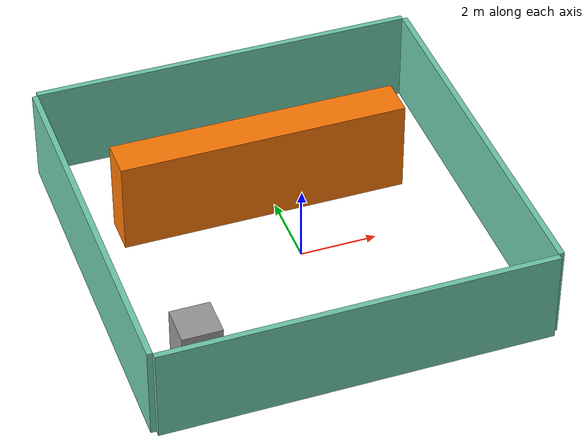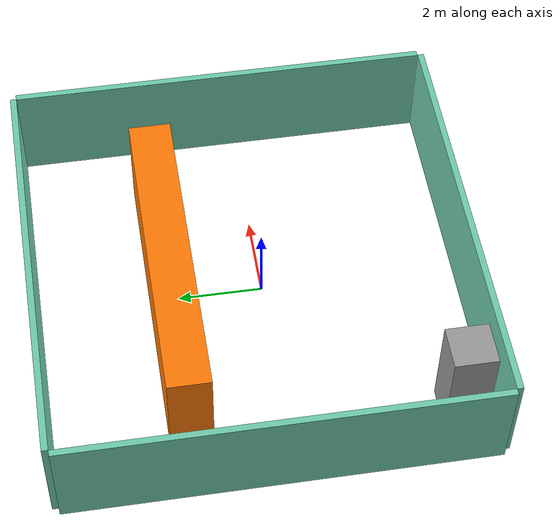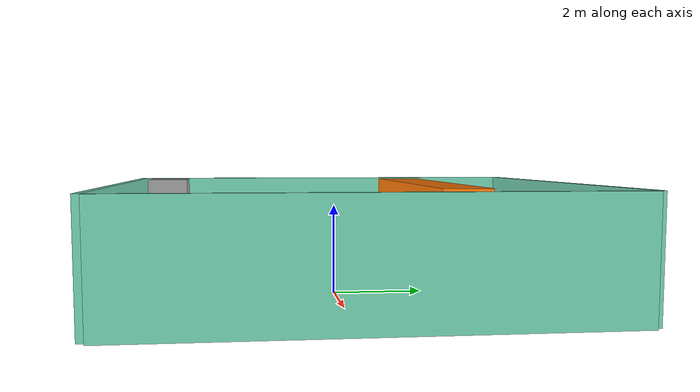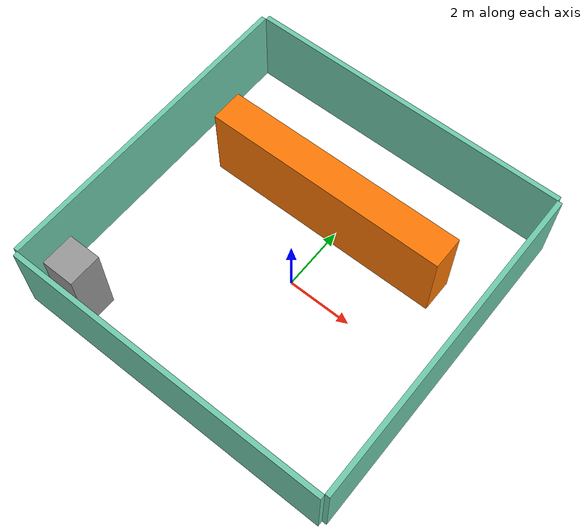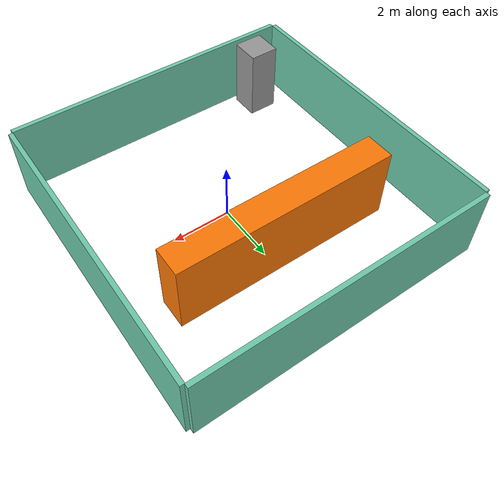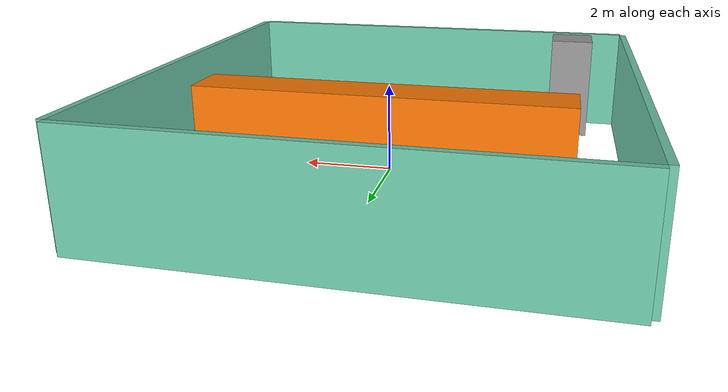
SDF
<?xml version='1.0'?>
<sdf version='1.7'>
  <model name='deneme1'>
    <pose>-0.247 0.3135 0 0 -0 0</pose>
    <link name='Wall_0'>
      <collision name='Wall_0_Collision'>
        <geometry>
          <box>
            <size>10 0.15 2.5</size>
          </box>
        </geometry>
        <pose>0 0 1.25 0 -0 0</pose>
      </collision>
      <visual name='Wall_0_Visual'>
        <pose>0 0 1.25 0 -0 0</pose>
        <geometry>
          <box>
            <size>10 0.15 2.5</size>
          </box>
        </geometry>
        <material>
          <script>
            <uri>file://media/materials/scripts/gazebo.material</uri>
            <name>Gazebo/Grey</name>
          </script>
          <ambient>0.435294 0.796078 0.67451 1</ambient>
        </material>
        <meta>
          <layer>0</layer>
        </meta>
      </visual>
      <pose>0.002 -5.0785 0 0 -0 0</pose>
    </link>
    <link name='Wall_11'>
      <collision name='Wall_11_Collision'>
        <geometry>
          <box>
            <size>1 1 2.5</size>
          </box>
        </geometry>
        <pose>0 0 1.25 0 -0 0</pose>
      </collision>
      <visual name='Wall_11_Visual'>
        <pose>0 0 1.25 0 -0 0</pose>
        <geometry>
          <box>
            <size>1 1 2.5</size>
          </box>
        </geometry>
        <material>
          <script>
            <uri>file://media/materials/scripts/gazebo.material</uri>
            <name>Gazebo/Grey</name>
          </script>
          <ambient>1 1 1 1</ambient>
        </material>
        <meta>
          <layer>0</layer>
        </meta>
      </visual>
      <pose>-3.753 -4.3135 0 0 -0 0</pose>
    </link>
    <link name='Wall_2'>
      <collision name='Wall_2_Collision'>
        <geometry>
          <box>
            <size>10 0.15 2.5</size>
          </box>
        </geometry>
        <pose>0 0 1.25 0 -0 0</pose>
      </collision>
      <visual name='Wall_2_Visual'>
        <pose>0 0 1.25 0 -0 0</pose>
        <geometry>
          <box>
            <size>10 0.15 2.5</size>
          </box>
        </geometry>
        <material>
          <script>
            <uri>file://media/materials/scripts/gazebo.material</uri>
            <name>Gazebo/Grey</name>
          </script>
          <ambient>0.435294 0.796078 0.67451 1</ambient>
        </material>
        <meta>
          <layer>0</layer>
        </meta>
      </visual>
      <pose>-5.066 -0.0015 0 0 -0 1.5708</pose>
    </link>
    <link name='Wall_28'>
      <collision name='Wall_28_Collision'>
        <geometry>
          <box>
            <size>7.5 1 2.5</size>
          </box>
        </geometry>
        <pose>0 0 1.25 0 -0 0</pose>
      </collision>
      <visual name='Wall_28_Visual'>
        <pose>0 0 1.25 0 -0 0</pose>
        <geometry>
          <box>
            <size>7.5 1 2.5</size>
          </box>
        </geometry>
        <material>
          <script>
            <uri>file://media/materials/scripts/gazebo.material</uri>
            <name>Gazebo/Grey</name>
          </script>
          <ambient>0.996078 0.47451 0.0196078 1</ambient>
        </material>
        <meta>
          <layer>0</layer>
        </meta>
      </visual>
      <pose>-0.099 1.8955 0 0 -0 0</pose>
    </link>
    <link name='Wall_4'>
      <collision name='Wall_4_Collision'>
        <geometry>
          <box>
            <size>10 0.15 2.5</size>
          </box>
        </geometry>
        <pose>0 0 1.25 0 -0 0</pose>
      </collision>
      <visual name='Wall_4_Visual'>
        <pose>0 0 1.25 0 -0 0</pose>
        <geometry>
          <box>
            <size>10 0.15 2.5</size>
          </box>
        </geometry>
        <material>
          <script>
            <uri>file://media/materials/scripts/gazebo.material</uri>
            <name>Gazebo/Grey</name>
          </script>
          <ambient>0.435294 0.796078 0.67451 1</ambient>
        </material>
        <meta>
          <layer>0</layer>
        </meta>
      </visual>
      <pose>0.01 5.0785 0 0 -0 0</pose>
    </link>
    <link name='Wall_6'>
      <collision name='Wall_6_Collision'>
        <geometry>
          <box>
            <size>10 0.15 2.5</size>
          </box>
        </geometry>
        <pose>0 0 1.25 0 -0 0</pose>
      </collision>
      <visual name='Wall_6_Visual'>
        <pose>0 0 1.25 0 -0 0</pose>
        <geometry>
          <box>
            <size>10 0.15 2.5</size>
          </box>
        </geometry>
        <material>
          <script>
            <uri>file://media/materials/scripts/gazebo.material</uri>
            <name>Gazebo/Grey</name>
          </script>
          <ambient>0.435294 0.796078 0.67451 1</ambient>
        </material>
        <meta>
          <layer>0</layer>
        </meta>
      </visual>
      <pose>5.066 0.0085 0 0 -0 1.5708</pose>
    </link>
    <static>1</static>
  </model>
</sdf>
